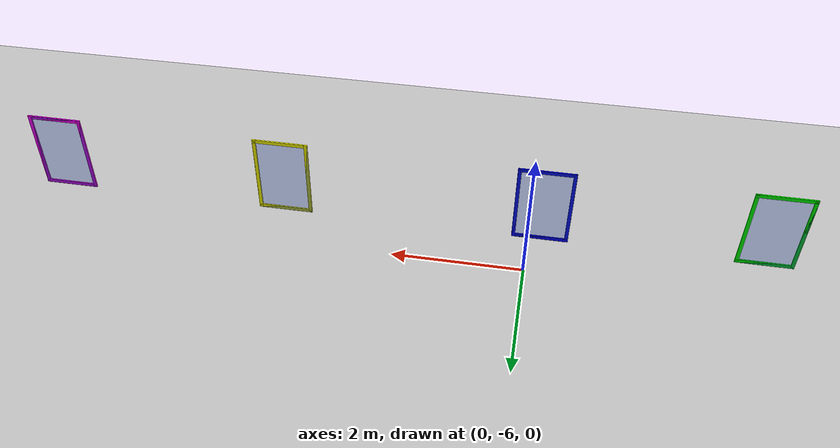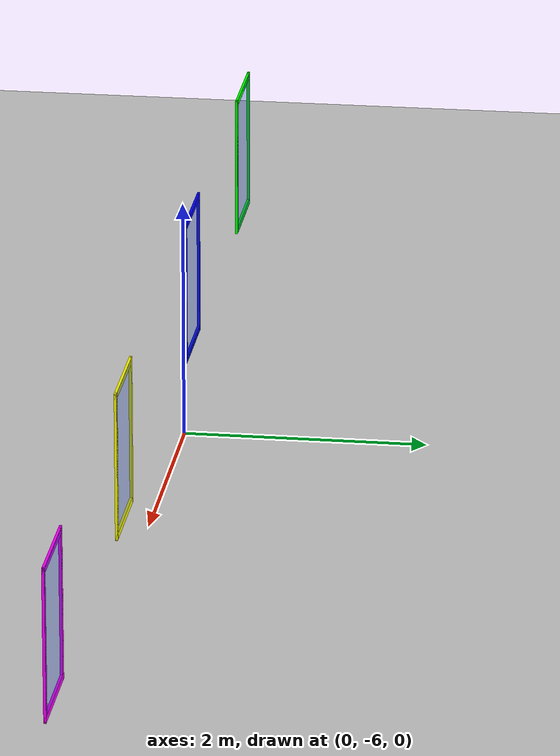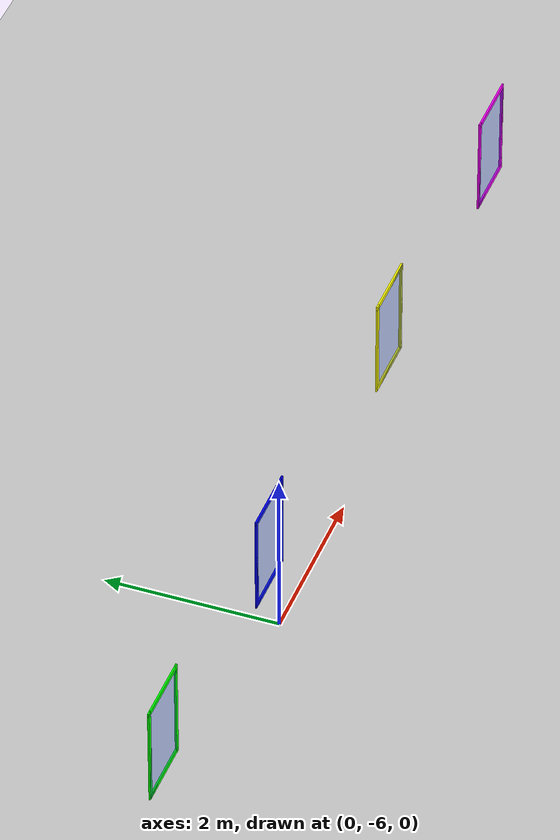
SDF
<sdf version="1.7">
 <world name="lab_world">
  <include><uri>model://sun</uri></include>
  <include><uri>model://ground_plane</uri></include>
  <model name="Window_2_1">
   <static>true</static>
   <link name="glass">
    <pose>-3.275 -5.9525 1.2999999999999998 0 0 0</pose>
    <collision name="glass_collision"><geometry><box><size>0.8 0.02 1.2</size></box></geometry></collision>
    <visual name="glass_visual">
     <geometry><box><size>0.8 0.02 1.2</size></box></geometry>
     <material><ambient>0.1 0.3 0.9 0.3</ambient><diffuse>0.1 0.3 0.9 0.3</diffuse></material>
    </visual>
   </link>
   <link name="left_frame">
    <pose>-3.65 -5.9525 1.2999999999999998 0 0 0</pose>
    <collision name="left_collision"><geometry><box><size>0.05 0.02 1.2</size></box></geometry></collision>
    <visual name="left_visual">
     <geometry><box><size>0.05 0.02 1.2</size></box></geometry>
     <material><ambient>0 1 0 1</ambient><diffuse>0 1 0 1</diffuse></material>
    </visual>
   </link>
   <link name="right_frame">
    <pose>-2.9 -5.9525 1.2999999999999998 0 0 0</pose>
    <collision name="right_collision"><geometry><box><size>0.05 0.02 1.2</size></box></geometry></collision>
    <visual name="right_visual">
     <geometry><box><size>0.05 0.02 1.2</size></box></geometry>
     <material><ambient>0 1 0 1</ambient><diffuse>0 1 0 1</diffuse></material>
    </visual>
   </link>
   <link name="top_frame">
    <pose>-3.275 -5.9525 1.8749999999999998 0 0 0</pose>
    <collision name="top_collision"><geometry><box><size>0.8 0.02 0.05</size></box></geometry></collision>
    <visual name="top_visual">
     <geometry><box><size>0.8 0.02 0.05</size></box></geometry>
     <material><ambient>0 1 0 1</ambient><diffuse>0 1 0 1</diffuse></material>
    </visual>
   </link>
   <link name="bottom_frame">
    <pose>-3.275 -5.9525 0.7249999999999999 0 0 0</pose>
    <collision name="bottom_collision"><geometry><box><size>0.8 0.02 0.05</size></box></geometry></collision>
    <visual name="bottom_visual">
     <geometry><box><size>0.8 0.02 0.05</size></box></geometry>
     <material><ambient>0 1 0 1</ambient><diffuse>0 1 0 1</diffuse></material>
    </visual>
   </link>
  </model>
  <model name="Window_2_2">
   <static>true</static>
   <link name="glass">
    <pose>-0.175 -5.9525 1.2999999999999998 0 0 0</pose>
    <collision name="glass_collision"><geometry><box><size>0.8 0.02 1.2</size></box></geometry></collision>
    <visual name="glass_visual">
     <geometry><box><size>0.8 0.02 1.2</size></box></geometry>
     <material><ambient>0.1 0.3 0.9 0.3</ambient><diffuse>0.1 0.3 0.9 0.3</diffuse></material>
    </visual>
   </link>
   <link name="left_frame">
    <pose>-0.55 -5.9525 1.2999999999999998 0 0 0</pose>
    <collision name="left_collision"><geometry><box><size>0.05 0.02 1.2</size></box></geometry></collision>
    <visual name="left_visual">
     <geometry><box><size>0.05 0.02 1.2</size></box></geometry>
     <material><ambient>0 0 1 1</ambient><diffuse>0 0 1 1</diffuse></material>
    </visual>
   </link>
   <link name="right_frame">
    <pose>0.2 -5.9525 1.2999999999999998 0 0 0</pose>
    <collision name="right_collision"><geometry><box><size>0.05 0.02 1.2</size></box></geometry></collision>
    <visual name="right_visual">
     <geometry><box><size>0.05 0.02 1.2</size></box></geometry>
     <material><ambient>0 0 1 1</ambient><diffuse>0 0 1 1</diffuse></material>
    </visual>
   </link>
   <link name="top_frame">
    <pose>-0.175 -5.9525 1.8749999999999998 0 0 0</pose>
    <collision name="top_collision"><geometry><box><size>0.8 0.02 0.05</size></box></geometry></collision>
    <visual name="top_visual">
     <geometry><box><size>0.8 0.02 0.05</size></box></geometry>
     <material><ambient>0 0 1 1</ambient><diffuse>0 0 1 1</diffuse></material>
    </visual>
   </link>
   <link name="bottom_frame">
    <pose>-0.175 -5.9525 0.7249999999999999 0 0 0</pose>
    <collision name="bottom_collision"><geometry><box><size>0.8 0.02 0.05</size></box></geometry></collision>
    <visual name="bottom_visual">
     <geometry><box><size>0.8 0.02 0.05</size></box></geometry>
     <material><ambient>0 0 1 1</ambient><diffuse>0 0 1 1</diffuse></material>
    </visual>
   </link>
  </model>
  <model name="Window_2_3">
   <static>true</static>
   <link name="glass">
    <pose>3.565 -5.9525 1.2999999999999998 0 0 0</pose>
    <collision name="glass_collision"><geometry><box><size>0.8 0.02 1.2</size></box></geometry></collision>
    <visual name="glass_visual">
     <geometry><box><size>0.8 0.02 1.2</size></box></geometry>
     <material><ambient>0.1 0.3 0.9 0.3</ambient><diffuse>0.1 0.3 0.9 0.3</diffuse></material>
    </visual>
   </link>
   <link name="left_frame">
    <pose>3.19 -5.9525 1.2999999999999998 0 0 0</pose>
    <collision name="left_collision"><geometry><box><size>0.05 0.02 1.2</size></box></geometry></collision>
    <visual name="left_visual">
     <geometry><box><size>0.05 0.02 1.2</size></box></geometry>
     <material><ambient>1 1 0 1</ambient><diffuse>1 1 0 1</diffuse></material>
    </visual>
   </link>
   <link name="right_frame">
    <pose>3.94 -5.9525 1.2999999999999998 0 0 0</pose>
    <collision name="right_collision"><geometry><box><size>0.05 0.02 1.2</size></box></geometry></collision>
    <visual name="right_visual">
     <geometry><box><size>0.05 0.02 1.2</size></box></geometry>
     <material><ambient>1 1 0 1</ambient><diffuse>1 1 0 1</diffuse></material>
    </visual>
   </link>
   <link name="top_frame">
    <pose>3.565 -5.9525 1.8749999999999998 0 0 0</pose>
    <collision name="top_collision"><geometry><box><size>0.8 0.02 0.05</size></box></geometry></collision>
    <visual name="top_visual">
     <geometry><box><size>0.8 0.02 0.05</size></box></geometry>
     <material><ambient>1 1 0 1</ambient><diffuse>1 1 0 1</diffuse></material>
    </visual>
   </link>
   <link name="bottom_frame">
    <pose>3.565 -5.9525 0.7249999999999999 0 0 0</pose>
    <collision name="bottom_collision"><geometry><box><size>0.8 0.02 0.05</size></box></geometry></collision>
    <visual name="bottom_visual">
     <geometry><box><size>0.8 0.02 0.05</size></box></geometry>
     <material><ambient>1 1 0 1</ambient><diffuse>1 1 0 1</diffuse></material>
    </visual>
   </link>
  </model>
  <model name="Window_2_4">
   <static>true</static>
   <link name="glass">
    <pose>6.945 -5.9525 1.2999999999999998 0 0 0</pose>
    <collision name="glass_collision"><geometry><box><size>0.8 0.02 1.2</size></box></geometry></collision>
    <visual name="glass_visual">
     <geometry><box><size>0.8 0.02 1.2</size></box></geometry>
     <material><ambient>0.1 0.3 0.9 0.3</ambient><diffuse>0.1 0.3 0.9 0.3</diffuse></material>
    </visual>
   </link>
   <link name="left_frame">
    <pose>6.57 -5.9525 1.2999999999999998 0 0 0</pose>
    <collision name="left_collision"><geometry><box><size>0.05 0.02 1.2</size></box></geometry></collision>
    <visual name="left_visual">
     <geometry><box><size>0.05 0.02 1.2</size></box></geometry>
     <material><ambient>1 0 1 1</ambient><diffuse>1 0 1 1</diffuse></material>
    </visual>
   </link>
   <link name="right_frame">
    <pose>7.32 -5.9525 1.2999999999999998 0 0 0</pose>
    <collision name="right_collision"><geometry><box><size>0.05 0.02 1.2</size></box></geometry></collision>
    <visual name="right_visual">
     <geometry><box><size>0.05 0.02 1.2</size></box></geometry>
     <material><ambient>1 0 1 1</ambient><diffuse>1 0 1 1</diffuse></material>
    </visual>
   </link>
   <link name="top_frame">
    <pose>6.945 -5.9525 1.8749999999999998 0 0 0</pose>
    <collision name="top_collision"><geometry><box><size>0.8 0.02 0.05</size></box></geometry></collision>
    <visual name="top_visual">
     <geometry><box><size>0.8 0.02 0.05</size></box></geometry>
     <material><ambient>1 0 1 1</ambient><diffuse>1 0 1 1</diffuse></material>
    </visual>
   </link>
   <link name="bottom_frame">
    <pose>6.945 -5.9525 0.7249999999999999 0 0 0</pose>
    <collision name="bottom_collision"><geometry><box><size>0.8 0.02 0.05</size></box></geometry></collision>
    <visual name="bottom_visual">
     <geometry><box><size>0.8 0.02 0.05</size></box></geometry>
     <material><ambient>1 0 1 1</ambient><diffuse>1 0 1 1</diffuse></material>
    </visual>
   </link>
  </model>
 </world>
</sdf>
